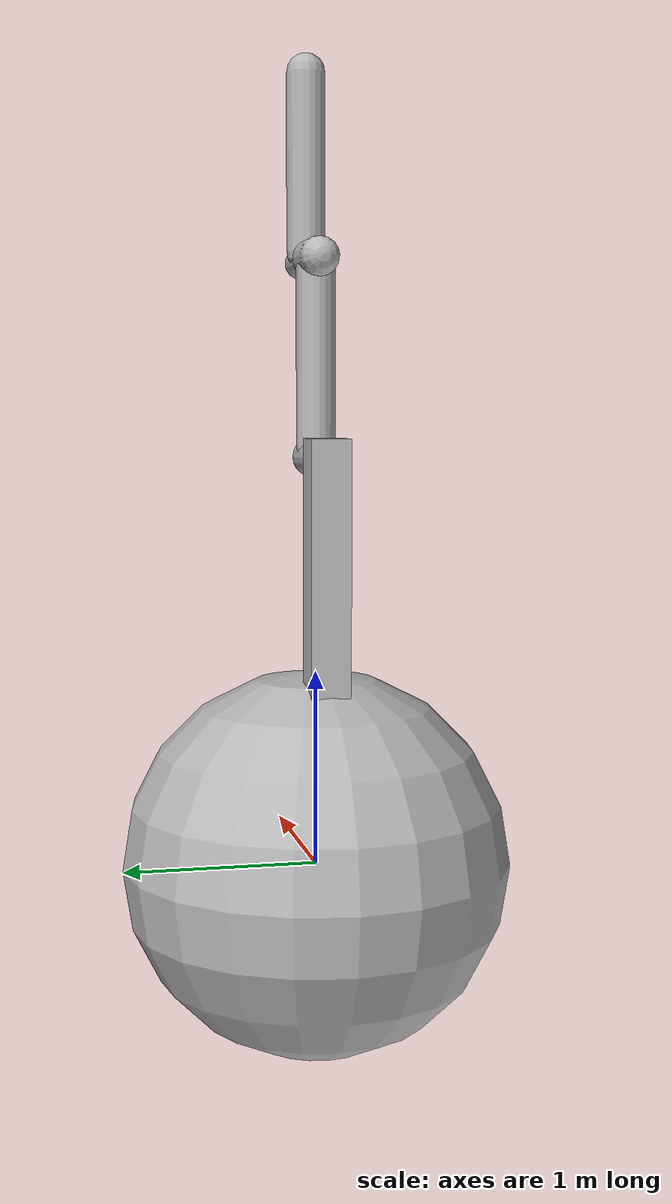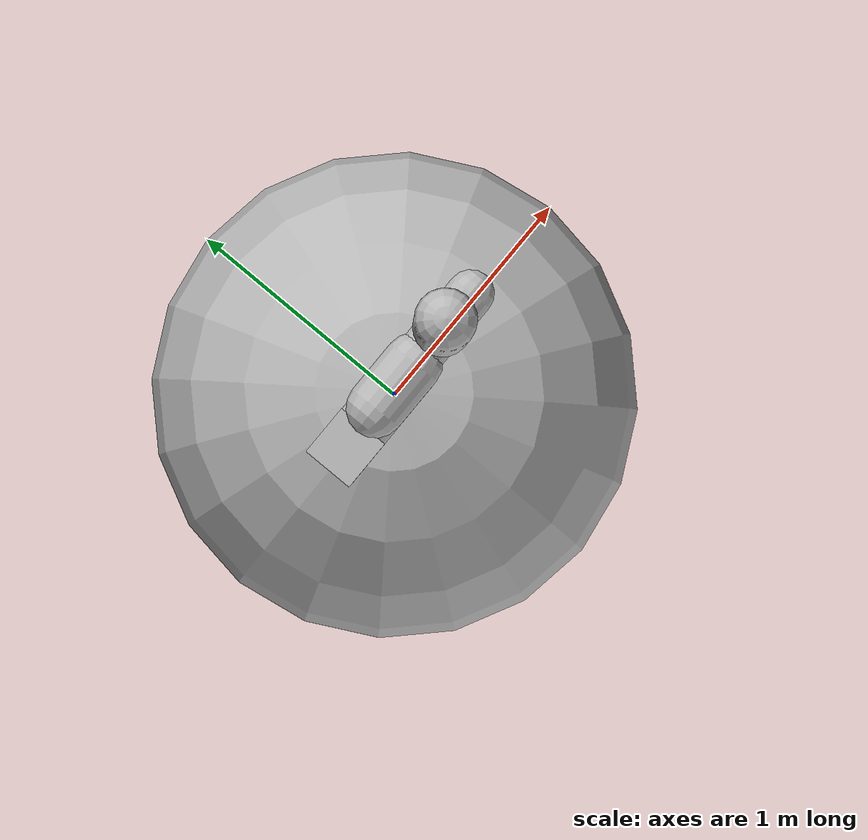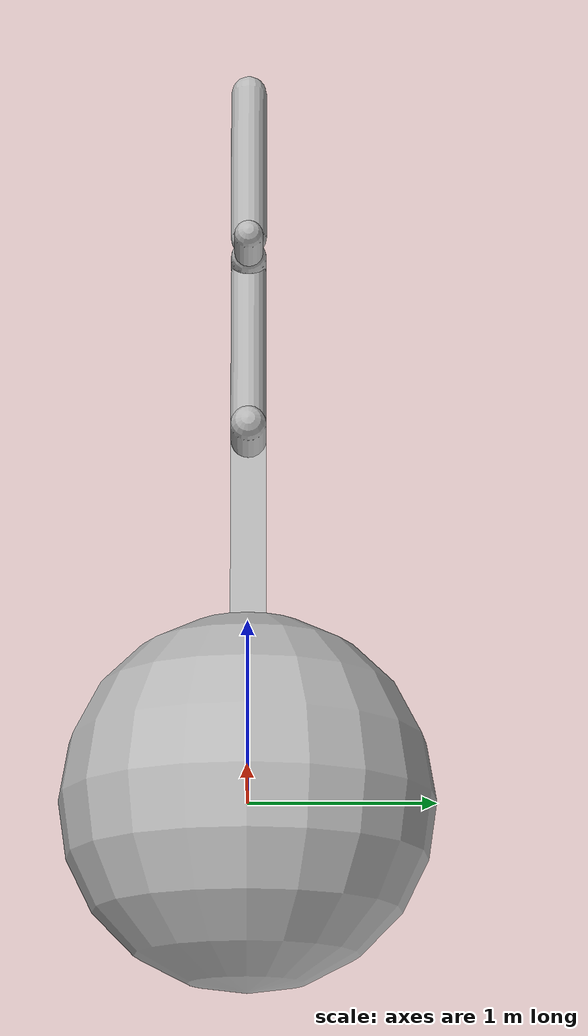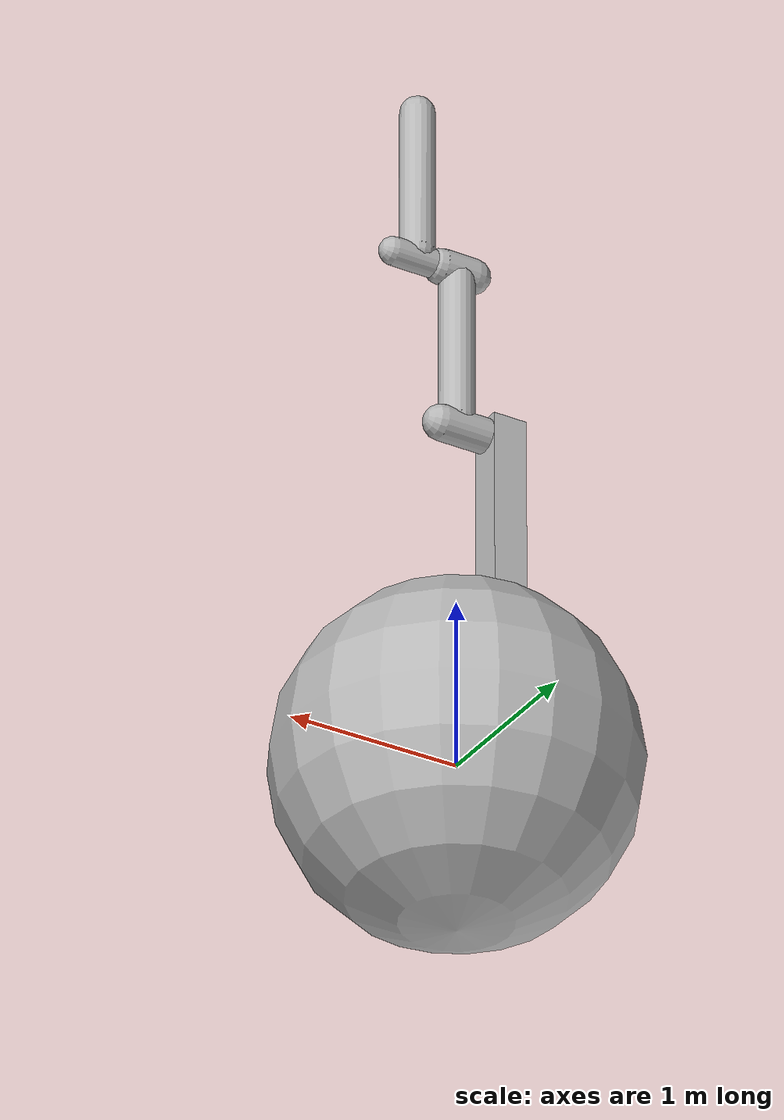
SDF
<?xml version='1.0' ?>
<!-- Copyright 2012 Open Source Robotics Foundation -->
<!-- Licensed under the Apache License, Version 2.0 -->
<!-- Provided SDF model originally taken from
     https://bitbucket.org/osrf/sdformat/src/deca28cd6cd5/test/integration/model/double_pendulum.sdf
     has undergone modifications -->
<sdf version='1.6'>
  <model name='double_pendulum_with_base'>
    <link name='base'>
      <inertial>
        <mass>100</mass>
      </inertial>
      <visual name='vis_plate_on_ground'>
        <pose>0 0 0.01 0 0 0</pose>
        <geometry>
          <drake:ellipsoid>
            <a>0.8</a>
            <b>0.6</b>
            <c>0.5</c>
          </drake:ellipsoid>
        </geometry>
      </visual>
      <visual name='vis_pole'>
        <pose>-0.275 0 1.1 0 0 0</pose>
        <geometry>
          <box>
            <size>0.2 0.2 2.2</size>
          </box>
        </geometry>
      </visual>
      <collision name='col_plate_on_ground'>
        <pose>0 0 0.01 0 0 0</pose>
        <geometry>
          <drake:capsule>
            <radius>0.8</radius>
            <length>0.02</length>
          </drake:capsule>
        </geometry>
      </collision>
      <collision name='col_pole'>
        <pose>-0.275 0 1.1 0 0 0</pose>
        <geometry>
          <box>
            <size>0.2 0.2 2.2</size>
          </box>
        </geometry>
      </collision>
    </link>
    <!-- upper link, length 1, angle -90 degrees -->
    <link name='upper_link'>
      <pose>0 0 2.1 0 0 0</pose>
      <self_collide>0</self_collide>
      <inertial>
        <pose>0 0 0.5 0 0 0</pose>
        <mass>30.0</mass>
      </inertial>
      <visual name='vis_upper_joint'>
        <pose>-0.05 0 0 0 1.5708 0</pose>
        <geometry>
          <drake:capsule>
            <radius>0.1</radius>
            <length>0.3</length>
          </drake:capsule>
        </geometry>
      </visual>
      <visual name='vis_lower_joint'>
        <pose>0 0 1.0 0 1.5708 0</pose>
        <geometry>
          <drake:capsule>
            <radius>0.1</radius>
            <length>0.2</length>
          </drake:capsule>
        </geometry>
      </visual>
      <visual name='vis_cylinder'>
        <pose>0 0 0.5 0 0 0</pose>
        <geometry>
          <drake:capsule>
            <radius>0.1</radius>
            <length>0.9</length>
          </drake:capsule>
        </geometry>
      </visual>
      <collision name='col_upper_joint'>
        <pose>-0.05 0 0 0 1.5708 0</pose>
        <geometry>
          <drake:capsule>
            <radius>0.1</radius>
            <length>0.3</length>
          </drake:capsule>
        </geometry>
      </collision>
      <collision name='col_lower_joint'>
        <pose>0 0 1.0 0 1.5708 0</pose>
        <geometry>
          <drake:capsule>
            <radius>0.1</radius>
            <length>0.2</length>
          </drake:capsule>
        </geometry>
      </collision>
      <collision name='col_cylinder'>
        <pose>0 0 0.5 0 0 0</pose>
        <geometry>
          <drake:capsule>
            <radius>0.1</radius>
            <length>0.9</length>
          </drake:capsule>
        </geometry>
      </collision>
    </link>
    <!-- lower link, length 1, angle ~-120 degrees more -->
    <link name='lower_link'>
      <pose>0.25 0.0 3.1 0 0 0</pose>
      <self_collide>0</self_collide>
      <inertial>
        <pose>0 0 0.5 0 0 0</pose>
        <mass>30.0</mass>
      </inertial>
      <visual name='vis_lower_joint'>
        <pose>0 0 0 0 1.5708 0</pose>
        <geometry>
          <drake:capsule>
            <radius>0.08</radius>
            <length>0.3</length>
          </drake:capsule>
        </geometry>
      </visual>
      <visual name='vis_drake:capsule'>
        <pose>0 0 0.5 0 0 0</pose>
        <geometry>
          <drake:capsule>
            <radius>0.1</radius>
            <length>0.9</length>
          </drake:capsule>
        </geometry>
      </visual>
      <collision name='col_lower_joint'>
        <pose>0 0 0 0 1.5708 0</pose>
        <geometry>
          <drake:capsule>
            <radius>0.08</radius>
            <length>0.3</length>
          </drake:capsule>
        </geometry>
      </collision>
      <collision name='col_drake:capsule'>
        <pose>0 0 0.5 0 0 0</pose>
        <geometry>
          <drake:capsule>
            <radius>0.1</radius>
            <length>0.9</length>
          </drake:capsule>
        </geometry>
      </collision>
    </link>
    <!-- pin joint for upper link, at origin of upper link -->
    <joint name='upper_joint' type='revolute'>
      <parent>base</parent>
      <child>upper_link</child>
      <axis>
        <xyz>1.0 0 0</xyz>
        <use_parent_model_frame>true</use_parent_model_frame>
        <limit>
          <effort>0.0</effort>
        </limit>
      </axis>
    </joint>
    <!-- pin joint for lower link, at origin of child link -->
    <joint name='lower_joint' type='revolute'>
      <parent>upper_link</parent>
      <child>lower_link</child>
      <axis>
        <xyz>1.0 0 0</xyz>
        <use_parent_model_frame>true</use_parent_model_frame>
        <limit>
          <effort>0.0</effort>
        </limit>
      </axis>
    </joint>
  </model>
</sdf>
